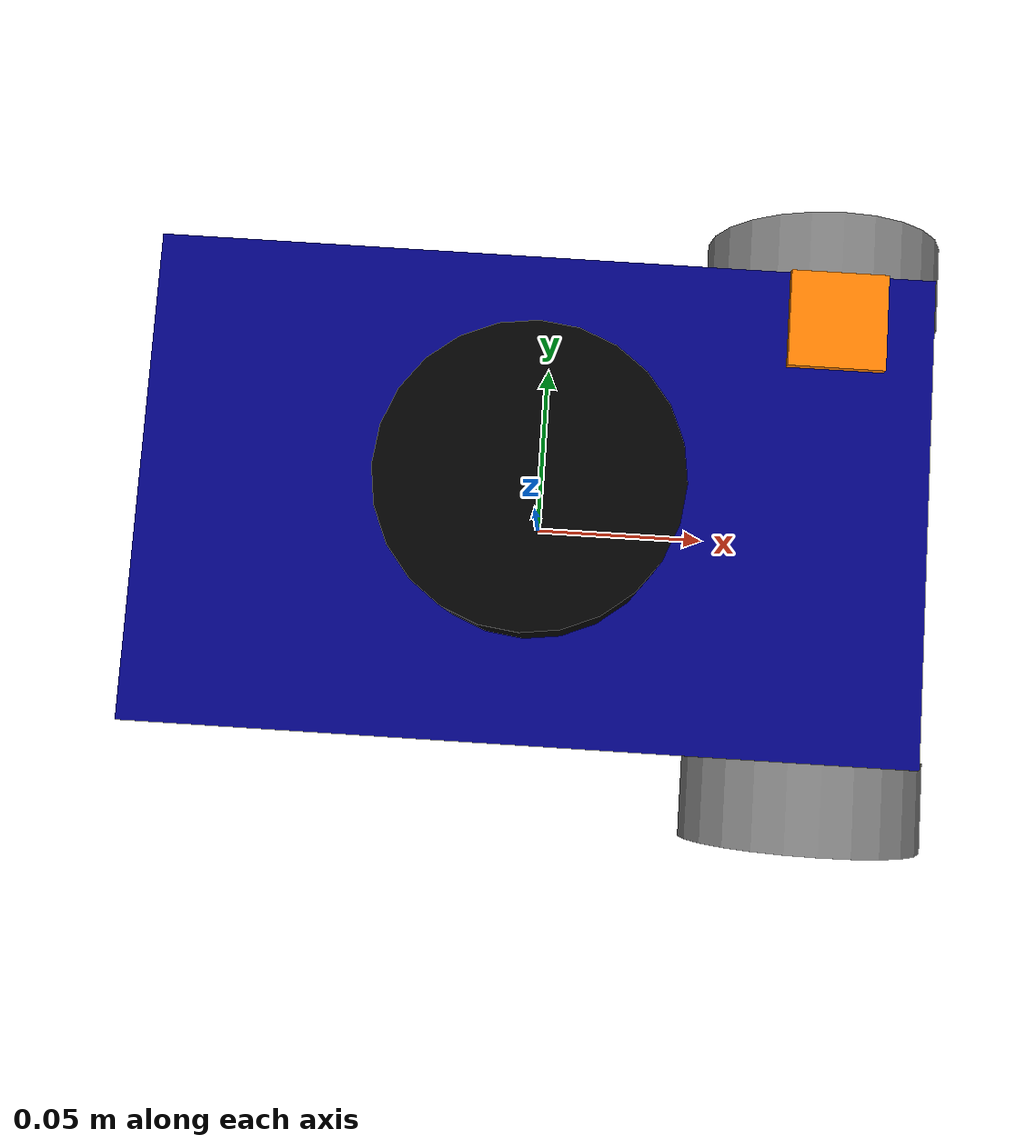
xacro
<?xml version="1.0"?>
<robot name="my_robot" xmlns:xacro="http://www.ros.org/wiki/xacro">

    <!-- Properties -->
    <xacro:include filename="common_properties.xacro" />

    <!-- Robot URDF -->
    <xacro:include filename="mobile_base.xacro" />

    <!-- ROS2 Control -->
    <xacro:include filename="ros2_control.xacro"/>

    <!-- Gazebo -->
    <xacro:include filename="gazebo_base.xacro"/>

</robot>

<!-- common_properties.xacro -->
<robot xmlns:xacro="http://www.ros.org/wiki/xacro">

    <material name="blue">
        <color rgba="0 0 0.5 1" />
    </material>

    <material name="red">
        <color rgba="1 0 0 1"/>
    </material>

    <material name="grey">
        <color rgba="0.5 0.5 0.5 1" />
    </material>

    <material name="orange">
        <color rgba="1.0 0.5 0 1" />
    </material>

    <material name="yellow">
        <color rgba="1.0 1.0 0 1" />
    </material>

    <material name="black">
        <color rgba="0 0 0 1" />
    </material>

    <xacro:macro name="box_inertia" params="m l w h xyz rpy">
        <inertial>
            <origin xyz="${xyz}" rpy="${rpy}" />
            <mass value="${m}" />
            <inertia ixx="${(m/12) * (h*h + l*l)}" ixy="0" ixz="0"
                     iyy="${(m/12) * (w*w + l*l)}" iyz="0"
                     izz="${(m/12) * (w*w + h*h)}" />
        </inertial>
    </xacro:macro>

    <xacro:macro name="cylinder_inertia" params="m r h xyz rpy">
        <inertial>
            <origin xyz="${xyz}" rpy="${rpy}" />
            <mass value="${m}" />
            <inertia ixx="${(m/12) * (3*r*r + h*h)}" ixy="0" ixz="0"
                     iyy="${(m/12) * (3*r*r + h*h)}" iyz="0"
                     izz="${(m/2) * (r*r)}" />
        </inertial>
    </xacro:macro>

    <xacro:macro name="sphere_inertia" params="m r xyz rpy">
        <inertial>
            <origin xyz="${xyz}" rpy="${rpy}" />
            <mass value="${m}" />
            <inertia ixx="${(2/5) * m * r * r}" ixy="0" ixz="0"
                     iyy="${(2/5) * m * r * r}" iyz="0"
                     izz="${(2/5) * m * r * r}" />
        </inertial>
    </xacro:macro>

</robot>

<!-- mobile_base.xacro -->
<robot xmlns:xacro="http://www.ros.org/wiki/xacro">

    <!-- Base -->
    <xacro:property name="base_length" value="0.2" />
    <xacro:property name="base_width" value="0.125" />
    <xacro:property name="base_height" value="0.04" />

    <!-- Wheels -->
    <xacro:property name="wheel_radius" value="0.034" />
    <xacro:property name="wheel_length" value="0.025" />

    <!-- Lidar -->
    <xacro:property name="lidar_radius" value="0.036" />
    <xacro:property name="lidar_length" value="0.035" />

    <!-- IMU -->
    <xacro:property name="imu_length" value="0.025" />
    <xacro:property name="imu_width" value="0.025" />
    <xacro:property name="imu_height" value="0.0025" />

    <link name="base_footprint" />

    <link name="base_link">
        <visual>
            <geometry>
                <box size="${base_length} ${base_width} ${base_height}" />
            </geometry>
            <origin xyz="0 0 ${base_height / 2.0}" rpy="0 0 0" />
            <material name="blue" />
        </visual>
        <collision>
            <geometry>
                <box size="${base_length} ${base_width} ${base_height}" />
            </geometry>
            <origin xyz="0 0 ${base_height / 2.0}" rpy="0 0 0" />
        </collision>
        <xacro:box_inertia m="5.0" l="${2*base_length}" w="${2*base_width}" h="${2*base_height}"
        xyz="0 0 ${base_height / 2.0}" rpy="0 0 0" />
    </link>

    <link name="imu_link">
        <visual>
            <geometry>
                <box size="${imu_length} ${imu_width} ${imu_height}" />
            </geometry>
            <origin xyz="0 0 0" rpy="0 0 0" />
            <material name="orange" />
        </visual>
        <collision>
            <geometry>
                <box size="${imu_length} ${imu_width} ${imu_height}" />
            </geometry>
            <origin xyz="0 0 0" rpy="0 0 0" />
        </collision>
        <xacro:box_inertia m="5.0" l="${2*imu_length}" w="${2*imu_width}" h="${2*imu_height}"
            xyz="0 0 ${imu_height / 2.0}" rpy="0 0 0" />
    </link>

    <link name="lidar_link">
          <visual>
              <geometry>
                  <cylinder radius="${lidar_radius}" length = "${lidar_length}"/>
              </geometry>
              <origin xyz="0 0 0" rpy="0 0 0"/>
              <material name="black"/>
          </visual>
          <collision>
            <geometry>
                <cylinder radius="${lidar_radius}" length = "${lidar_length}"/>
            </geometry>
            <origin xyz="0 0 0" rpy="0 0 0"/>
          </collision>
    </link>

    <xacro:macro name="wheel_link" params="prefix">
        <link name="${prefix}_wheel_link">
            <visual>
                <geometry>
                    <cylinder radius="${wheel_radius}" length="${wheel_length}" />
                </geometry>
                <origin xyz="0 0 0" rpy="${pi / 2.0} 0 0" />
                <material name="grey" />
            </visual>
            <collision>
                <geometry>
                    <cylinder radius="${wheel_radius}" length="${wheel_length}" />
                </geometry>
                <origin xyz="0 0 0" rpy="${pi / 2.0} 0 0" />
            </collision>
            <xacro:cylinder_inertia m="1.0" r="${2*wheel_radius}" h="${2*wheel_length}"
                                    xyz="0 0 0" rpy="${pi / 2.0} 0 0" />
        </link>
    </xacro:macro>

    <xacro:wheel_link prefix="right_front" />
    <xacro:wheel_link prefix="left_front" />
    <!-- # I added this. -->

    <joint name="base_joint" type="fixed">
        <parent link="base_footprint" />
        <child link="base_link" />
        <origin xyz="0 0 ${wheel_radius}" rpy="0 0 0"/>
    </joint>

    <joint name="base_right_front_wheel_joint" type="continuous">
        <parent link="base_link" />
        <child link="right_front_wheel_link" />
        <origin xyz="${base_length / 2.0 - 0.02} ${-(base_width + wheel_length) / 2.0} -0.015" rpy="0 0 0" />
        <axis xyz="0 1 0" />
    </joint>

    <joint name="base_left_front_wheel_joint" type="continuous">
        <parent link="base_link" />
        <child link="left_front_wheel_link" />
        <origin xyz="${base_length / 2.0 - 0.02} ${(base_width + wheel_length) / 2.0} -0.015" rpy="0 0 0" />
        <axis xyz="0 1 0" />
    </joint>

    <joint name="base_lidar_joint" type="fixed">
        <parent link="base_link" />
        <child link="lidar_link" />
        <origin xyz="0 0 ${base_height + lidar_length / 2.0}" rpy="0 0 0" />
        <axis xyz="0 0 {3.1415/2.0}" />
    </joint>

    <joint name="base_imu_joint" type="fixed">
        <parent link="base_link" />
        <child link="imu_link" />
        <origin xyz="${base_length / 2.0 - imu_length} ${base_width / 2.0 - imu_width / 2.0} ${base_height + imu_height / 2.0}" rpy="0 0 0" />
        <axis xyz="0 0 0" />
    </joint>

</robot>
